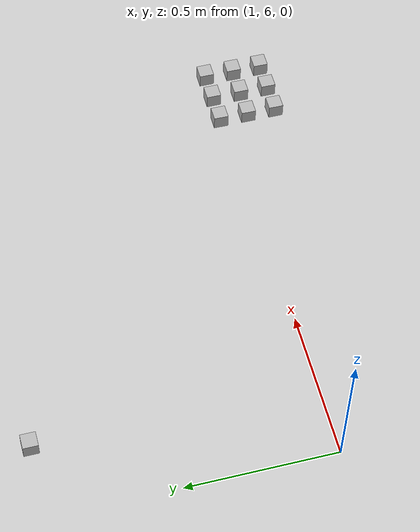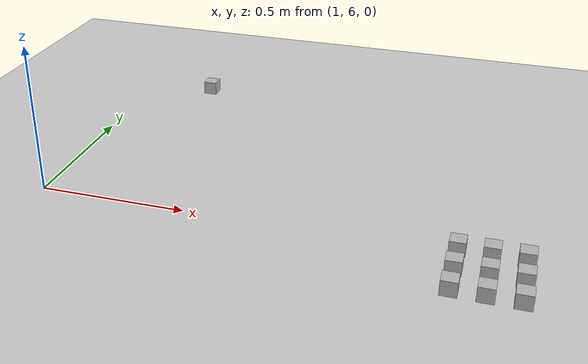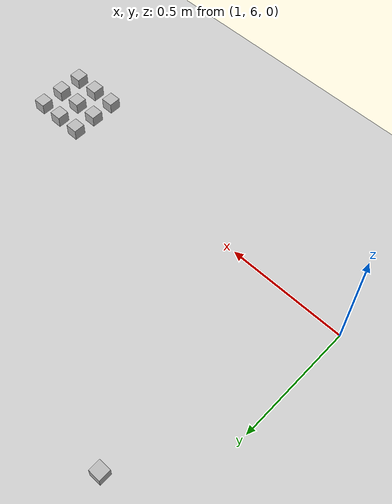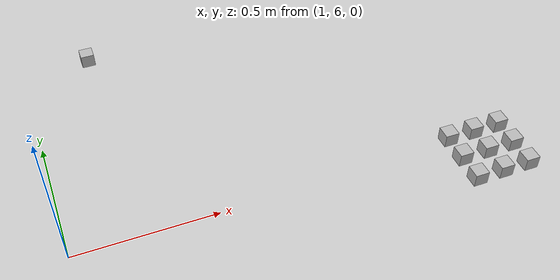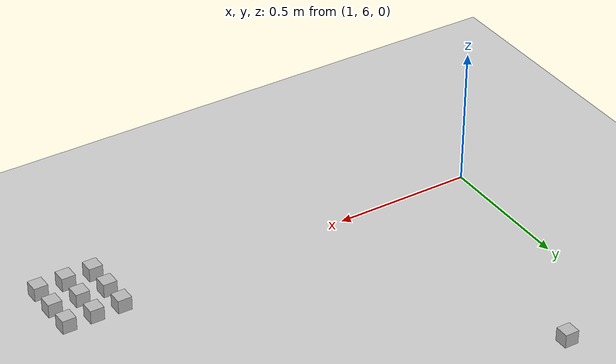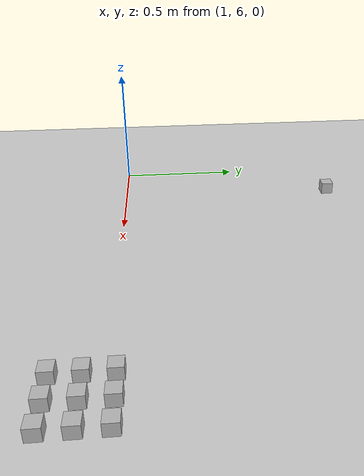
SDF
<sdf version="1.6">
 <world name="default">
  <model name="ground_plane">
   <static>1</static>
   <link name="link">
    <collision name="collision">
     <geometry><plane><normal>0 0 1</normal><size>100 100</size></plane></geometry>
     <surface><friction><ode><mu>100</mu><mu2>50</mu2></ode></friction></surface>
    </collision>
    <visual name="visual">
     <cast_shadows>0</cast_shadows>
     <geometry><plane><normal>0 0 1</normal><size>100 100</size></plane></geometry>
     <material>
      <script><uri>file://media/materials/scripts/gazebo.material</uri><name>Gazebo/Grey</name></script>
     </material>
    </visual>
   </link>
  </model>
  <model name="at8">
   <static>0</static>
   <link name="link">
    <inertial>
     <mass>0.01</mass>
     <inertia><ixx>4e-05</ixx><ixy>0</ixy><ixz>0</ixz><iyy>4e-05</iyy><iyz>0</iyz><izz>4e-05</izz></inertia>
    </inertial>
    <visual name="visual">
     <geometry><box><size>0.05 0.05 0.05</size></box></geometry>
     <material>
      <script>
       <uri>model://at0/materials/scripts</uri>
       <uri>model://at0/materials/textures</uri>
       <name>at0/Diffuse</name>
      </script>
     </material>
    </visual>
    <collision name="collision">
     <geometry><box><size>0.05 0.05 0.05</size></box></geometry>
     <surface><friction><ode><mu>0.8</mu><mu2>0.7</mu2></ode></friction></surface>
    </collision>
   </link>
   <pose>2.3606 5.82392 0.024997 2.9e-05 -2.9e-05 -1e-06</pose>
  </model>
  <model name="at9">
   <static>0</static>
   <link name="link">
    <inertial>
     <mass>0.01</mass>
     <inertia><ixx>4e-05</ixx><ixy>0</ixy><ixz>0</ixz><iyy>4e-05</iyy><iyz>0</iyz><izz>4e-05</izz></inertia>
    </inertial>
    <visual name="visual">
     <geometry><box><size>0.05 0.05 0.05</size></box></geometry>
     <material>
      <script>
       <uri>model://at0/materials/scripts</uri>
       <uri>model://at0/materials/textures</uri>
       <name>at0/Diffuse</name>
      </script>
     </material>
    </visual>
    <collision name="collision">
     <geometry><box><size>0.05 0.05 0.05</size></box></geometry>
     <surface><friction><ode><mu>0.8</mu><mu2>0.7</mu2></ode></friction></surface>
    </collision>
   </link>
   <pose>2.4606 5.82392 0.024997 2.9e-05 -2.9e-05 -1e-06</pose>
  </model>
  <model name="at10">
   <static>0</static>
   <link name="link">
    <inertial>
     <mass>0.01</mass>
     <inertia><ixx>4e-05</ixx><ixy>0</ixy><ixz>0</ixz><iyy>4e-05</iyy><iyz>0</iyz><izz>4e-05</izz></inertia>
    </inertial>
    <visual name="visual">
     <geometry><box><size>0.05 0.05 0.05</size></box></geometry>
     <material>
      <script>
       <uri>model://at0/materials/scripts</uri>
       <uri>model://at0/materials/textures</uri>
       <name>at0/Diffuse</name>
      </script>
     </material>
    </visual>
    <collision name="collision">
     <geometry><box><size>0.05 0.05 0.05</size></box></geometry>
     <surface><friction><ode><mu>0.8</mu><mu2>0.7</mu2></ode></friction></surface>
    </collision>
   </link>
   <pose>2.5606 5.82392 0.024997 2.9e-05 -2.9e-05 -1e-06</pose>
  </model>
  <model name="at16">
   <static>0</static>
   <link name="link">
    <inertial>
     <mass>0.01</mass>
     <inertia><ixx>4e-05</ixx><ixy>0</ixy><ixz>0</ixz><iyy>4e-05</iyy><iyz>0</iyz><izz>4e-05</izz></inertia>
    </inertial>
    <visual name="visual">
     <geometry><box><size>0.05 0.05 0.05</size></box></geometry>
     <material>
      <script>
       <uri>model://at0/materials/scripts</uri>
       <uri>model://at0/materials/textures</uri>
       <name>at0/Diffuse</name>
      </script>
     </material>
    </visual>
    <collision name="collision">
     <geometry><box><size>0.05 0.05 0.05</size></box></geometry>
     <surface><friction><ode><mu>0.8</mu><mu2>0.7</mu2></ode></friction></surface>
    </collision>
   </link>
   <pose>2.3606 5.92392 0.024997 2.9e-05 -2.9e-05 -1e-06</pose>
  </model>
  <model name="at17">
   <static>0</static>
   <link name="link">
    <inertial>
     <mass>0.01</mass>
     <inertia><ixx>4e-05</ixx><ixy>0</ixy><ixz>0</ixz><iyy>4e-05</iyy><iyz>0</iyz><izz>4e-05</izz></inertia>
    </inertial>
    <visual name="visual">
     <geometry><box><size>0.05 0.05 0.05</size></box></geometry>
     <material>
      <script>
       <uri>model://at0/materials/scripts</uri>
       <uri>model://at0/materials/textures</uri>
       <name>at0/Diffuse</name>
      </script>
     </material>
    </visual>
    <collision name="collision">
     <geometry><box><size>0.05 0.05 0.05</size></box></geometry>
     <surface><friction><ode><mu>0.8</mu><mu2>0.7</mu2></ode></friction></surface>
    </collision>
   </link>
   <pose>2.4606 5.92392 0.024997 2.9e-05 -2.9e-05 -1e-06</pose>
  </model>
  <model name="at18">
   <static>0</static>
   <link name="link">
    <inertial>
     <mass>0.01</mass>
     <inertia><ixx>4e-05</ixx><ixy>0</ixy><ixz>0</ixz><iyy>4e-05</iyy><iyz>0</iyz><izz>4e-05</izz></inertia>
    </inertial>
    <visual name="visual">
     <geometry><box><size>0.05 0.05 0.05</size></box></geometry>
     <material>
      <script>
       <uri>model://at0/materials/scripts</uri>
       <uri>model://at0/materials/textures</uri>
       <name>at0/Diffuse</name>
      </script>
     </material>
    </visual>
    <collision name="collision">
     <geometry><box><size>0.05 0.05 0.05</size></box></geometry>
     <surface><friction><ode><mu>0.8</mu><mu2>0.7</mu2></ode></friction></surface>
    </collision>
   </link>
   <pose>2.5606 5.92392 0.024997 2.9e-05 -2.9e-05 -1e-06</pose>
  </model>
  <model name="at24">
   <static>0</static>
   <link name="link">
    <inertial>
     <mass>0.01</mass>
     <inertia><ixx>4e-05</ixx><ixy>0</ixy><ixz>0</ixz><iyy>4e-05</iyy><iyz>0</iyz><izz>4e-05</izz></inertia>
    </inertial>
    <visual name="visual">
     <geometry><box><size>0.05 0.05 0.05</size></box></geometry>
     <material>
      <script>
       <uri>model://at0/materials/scripts</uri>
       <uri>model://at0/materials/textures</uri>
       <name>at0/Diffuse</name>
      </script>
     </material>
    </visual>
    <collision name="collision">
     <geometry><box><size>0.05 0.05 0.05</size></box></geometry>
     <surface><friction><ode><mu>0.8</mu><mu2>0.7</mu2></ode></friction></surface>
    </collision>
   </link>
   <pose>2.3606 6.02392 0.024997 2.9e-05 -2.9e-05 -1e-06</pose>
  </model>
  <model name="at25">
   <static>0</static>
   <link name="link">
    <inertial>
     <mass>0.01</mass>
     <inertia><ixx>4e-05</ixx><ixy>0</ixy><ixz>0</ixz><iyy>4e-05</iyy><iyz>0</iyz><izz>4e-05</izz></inertia>
    </inertial>
    <visual name="visual">
     <geometry><box><size>0.05 0.05 0.05</size></box></geometry>
     <material>
      <script>
       <uri>model://at0/materials/scripts</uri>
       <uri>model://at0/materials/textures</uri>
       <name>at0/Diffuse</name>
      </script>
     </material>
    </visual>
    <collision name="collision">
     <geometry><box><size>0.05 0.05 0.05</size></box></geometry>
     <surface><friction><ode><mu>0.8</mu><mu2>0.7</mu2></ode></friction></surface>
    </collision>
   </link>
   <pose>2.4606 6.02392 0.024997 2.9e-05 -2.9e-05 -1e-06</pose>
  </model>
  <model name="at26">
   <static>0</static>
   <link name="link">
    <inertial>
     <mass>0.01</mass>
     <inertia><ixx>4e-05</ixx><ixy>0</ixy><ixz>0</ixz><iyy>4e-05</iyy><iyz>0</iyz><izz>4e-05</izz></inertia>
    </inertial>
    <visual name="visual">
     <geometry><box><size>0.05 0.05 0.05</size></box></geometry>
     <material>
      <script>
       <uri>model://at0/materials/scripts</uri>
       <uri>model://at0/materials/textures</uri>
       <name>at0/Diffuse</name>
      </script>
     </material>
    </visual>
    <collision name="collision">
     <geometry><box><size>0.05 0.05 0.05</size></box></geometry>
     <surface><friction><ode><mu>0.8</mu><mu2>0.7</mu2></ode></friction></surface>
    </collision>
   </link>
   <pose>2.5606 6.02392 0.024997 2.9e-05 -2.9e-05 -1e-06</pose>
  </model>
  <model name="at98">
   <static>0</static>
   <link name="link">
    <inertial>
     <mass>0.01</mass>
     <inertia><ixx>4e-05</ixx><ixy>0</ixy><ixz>0</ixz><iyy>4e-05</iyy><iyz>0</iyz><izz>4e-05</izz></inertia>
    </inertial>
    <visual name="visual">
     <geometry><box><size>0.05 0.05 0.05</size></box></geometry>
     <material>
      <script>
       <uri>model://at0/materials/scripts</uri>
       <uri>model://at0/materials/textures</uri>
       <name>at0/Diffuse</name>
      </script>
     </material>
    </visual>
    <collision name="collision">
     <geometry><box><size>0.05 0.05 0.05</size></box></geometry>
     <surface><friction><ode><mu>0.8</mu><mu2>0.7</mu2></ode></friction></surface>
    </collision>
   </link>
   <pose>1.24897 6.92428 0.024997 2.9e-05 -2.9e-05 -1e-06</pose>
  </model>
  <model name="Barrier_South">
   <static>1</static>
   <link name="link">
    <inertial>
     <mass>1</mass>
     <inertia><ixx>0.083</ixx><ixy>0</ixy><ixz>0</ixz><iyy>0</iyy><iyz>0</iyz><izz>0.083</izz></inertia>
    </inertial>
    <collision name="collision">
     <geometry><box><size>0.05 15 0.33</size></box></geometry>
     <surface><friction><ode><mu>1</mu><mu2>1</mu2><slip1>0</slip1><slip2>0</slip2></ode></friction></surface>
    </collision>
    <visual name="visual">
     <geometry><box><size>0.05 15 0.33</size></box></geometry>
     <material>
      <ambient>255 131 0 1</ambient>
      <diffuse>255 131 0 1</diffuse>
      <specular>0.1 0.1 0.1 1</specular>
      <emissive>0 0 0 0</emissive>
     </material>
    </visual>
   </link>
   <pose>0 7.5 0 0 -0 1.5708</pose>
  </model>
 </world>
</sdf>
